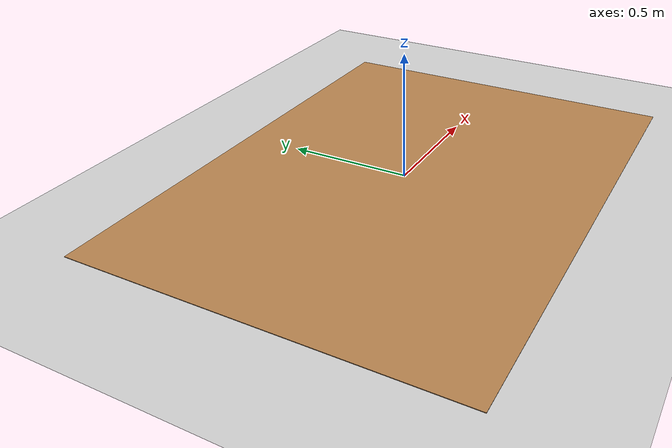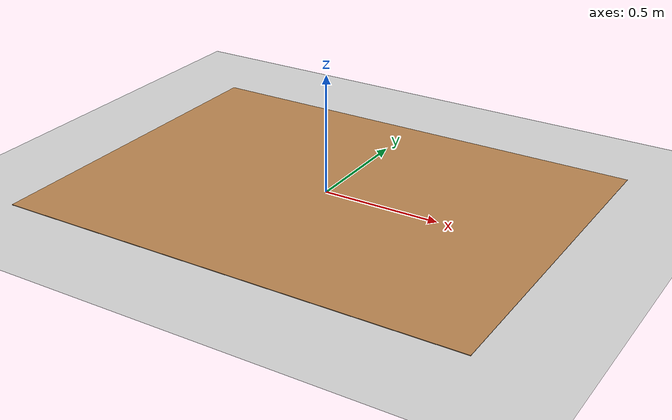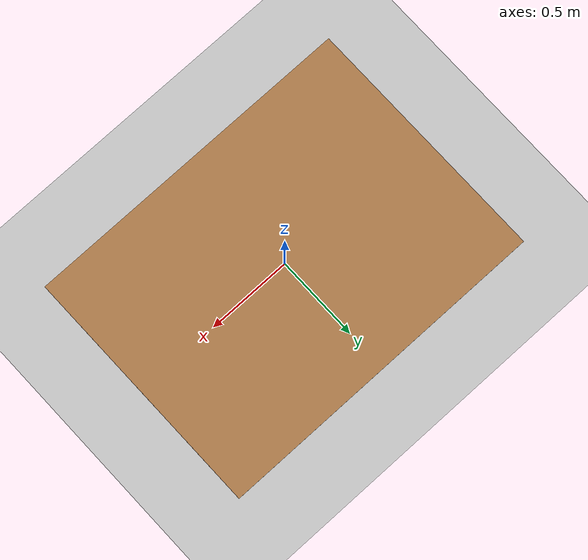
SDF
<?xml version="1.0" ?>
<sdf version="1.4">
  <world name="default">
    <!-- Physics - MAXIMUM performance settings -->
    <physics type="ode">
      <max_step_size>0.001</max_step_size>
      <real_time_factor>1</real_time_factor>
      <real_time_update_rate>1000</real_time_update_rate>
      <gravity>0 0 -9.81</gravity>
      <ode>
        <solver>
          <type>quick</type>
          <iters>10000</iters>
          <sor>1.3</sor>
        </solver>
        <constraints>
          <cfm>0.0</cfm>
          <erp>0.2</erp>
        </constraints>
      </ode>
    </physics>

    <!-- Scene - minimal rendering -->
    <scene>
      <ambient>0.6 0.6 0.6 1</ambient>
      <background>0.7 0.7 0.7 1</background>
      <shadows>false</shadows>
      <grid>false</grid>
    </scene>

    <!-- Ground Plane -->
    <model name="ground_plane">
      <static>true</static>
      <link name="link">
        <collision name="collision">
          <geometry>
            <plane>
              <normal>0 0 1</normal>
              <size>100 100</size>
            </plane>
          </geometry>
        </collision>
        <visual name="visual">
          <geometry>
            <plane>
              <normal>0 0 1</normal>
              <size>100 100</size>
            </plane>
          </geometry>
          <material>
            <script>
              <uri>file://media/materials/scripts/gazebo.material</uri>
              <name>Gazebo/Grey</name>
            </script>
          </material>
        </visual>
      </link>
    </model>

    <!-- Lighting - shadows disabled for performance -->
    <light type="directional" name="sun">
      <cast_shadows>false</cast_shadows>
      <pose>0 0 10 0 0 0</pose>
      <diffuse>0.8 0.8 0.8 1</diffuse>
      <specular>0.5 0.5 0.5 1</specular>
      <direction>0.12 0.12 -0.9</direction>
    </light>

    <!-- Work surface / Table -->
    <model name="work_table">
      <static>true</static>
      <pose>0 0 -0.05 0 0 0</pose>
      <link name="table_surface">
        <visual name="visual">
          <geometry>
            <box>
              <size>2.0 1.5 0.1</size>
            </box>
          </geometry>
          <material>
            <script>
              <uri>file://media/materials/scripts/gazebo.material</uri>
              <name>Gazebo/WoodFloor</name>
            </script>
          </material>
        </visual>
        <collision name="collision">
          <geometry>
            <box>
              <size>2.0 1.5 0.1</size>
            </box>
          </geometry>
        </collision>
      </link>
    </model>

  </world>
</sdf>
